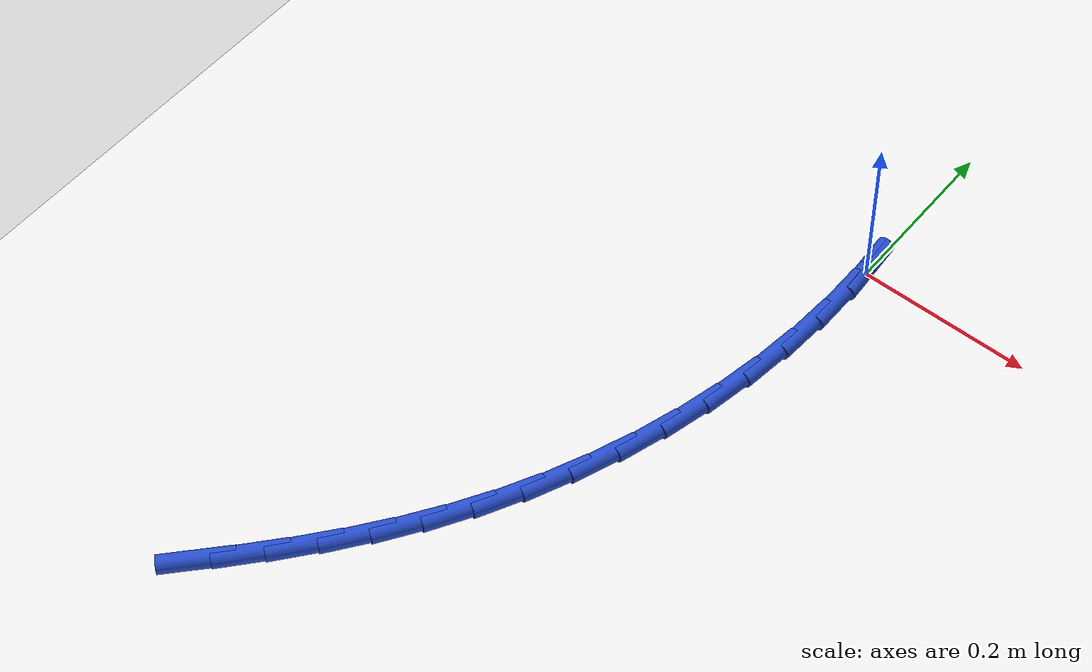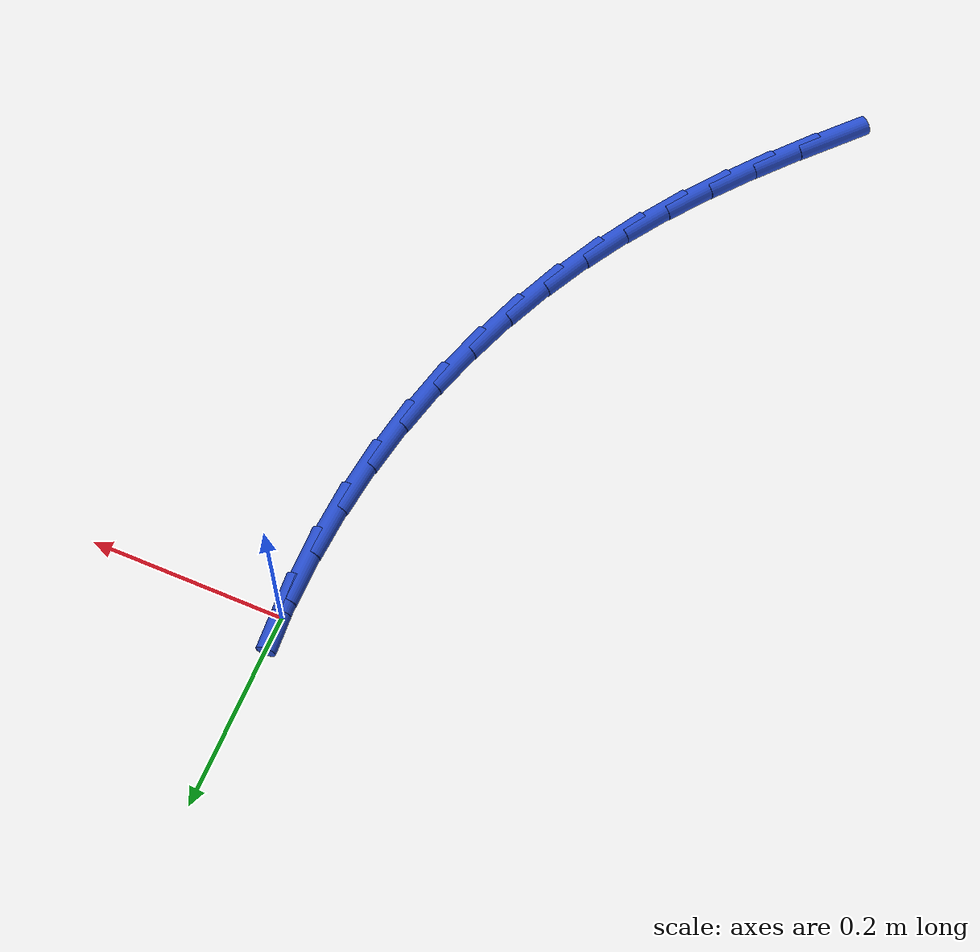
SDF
<sdf version="1.6">
 <world name="default">
  <model name="ground_plane">
   <static>1</static>
   <link name="link">
    <collision name="collision">
     <geometry><plane><normal>0 0 1</normal><size>100 100</size></plane></geometry>
     <surface><friction><ode><mu>100</mu><mu2>50</mu2></ode></friction></surface>
    </collision>
    <visual name="visual">
     <cast_shadows>0</cast_shadows>
     <geometry><plane><normal>0 0 1</normal><size>100 100</size></plane></geometry>
     <material>
      <script><uri>file://media/materials/scripts/gazebo.material</uri><name>Gazebo/WhiteGlow</name></script>
     </material>
    </visual>
   </link>
  </model>
  <model name="line">
   <link name="link_0">
    <pose>1.734723475976807e-17 -4.163336342344337e-17 0.01 0 1.57 -1.5069342114797732</pose>
    <collision name="collision">
     <geometry><cylinder><radius>0.01</radius><length>0.08</length></cylinder></geometry>
    </collision>
    <visual name="visual">
     <material>
      <script><name>Gazebo/Blue</name><uri>file://media/materials/scripts/gazebo.material</uri></script>
     </material>
     <geometry><cylinder><radius>0.01</radius><length>0.08</length></cylinder></geometry>
    </visual>
   </link>
   <link name="link_125">
    <pose>-0.3036543982249472 -0.7085538495268223 0.01 0 1.57 0.8201374668254308</pose>
    <collision name="collision">
     <geometry><cylinder><radius>0.01</radius><length>0.08</length></cylinder></geometry>
    </collision>
    <visual name="visual">
     <material>
      <script><name>Gazebo/Blue</name><uri>file://media/materials/scripts/gazebo.material</uri></script>
     </material>
     <geometry><cylinder><radius>0.01</radius><length>0.08</length></cylinder></geometry>
    </visual>
   </link>
   <link name="link_126">
    <pose>-0.26699323300843236 -0.6692527459438485 0.01 0 1.57 0.8505710199497232</pose>
    <collision name="collision">
     <geometry><cylinder><radius>0.01</radius><length>0.08</length></cylinder></geometry>
    </collision>
    <visual name="visual">
     <material>
      <script><name>Gazebo/Blue</name><uri>file://media/materials/scripts/gazebo.material</uri></script>
     </material>
     <geometry><cylinder><radius>0.01</radius><length>0.08</length></cylinder></geometry>
    </visual>
   </link>
   <link name="link_127">
    <pose>-0.23208509721345605 -0.6294698804759024 0.01 0 1.57 0.8875198498617581</pose>
    <collision name="collision">
     <geometry><cylinder><radius>0.01</radius><length>0.08</length></cylinder></geometry>
    </collision>
    <visual name="visual">
     <material>
      <script><name>Gazebo/Blue</name><uri>file://media/materials/scripts/gazebo.material</uri></script>
     </material>
     <geometry><cylinder><radius>0.01</radius><length>0.08</length></cylinder></geometry>
    </visual>
   </link>
   <link name="link_128">
    <pose>-0.19907413199881066 -0.5889205948405979 0.01 0 1.57 0.930852631827002</pose>
    <collision name="collision">
     <geometry><cylinder><radius>0.01</radius><length>0.08</length></cylinder></geometry>
    </collision>
    <visual name="visual">
     <material>
      <script><name>Gazebo/Blue</name><uri>file://media/materials/scripts/gazebo.material</uri></script>
     </material>
     <geometry><cylinder><radius>0.01</radius><length>0.08</length></cylinder></geometry>
    </visual>
   </link>
   <link name="link_129">
    <pose>-0.16810447852328922 -0.5473202307555501 0.01 0 1.57 0.9802161530614742</pose>
    <collision name="collision">
     <geometry><cylinder><radius>0.01</radius><length>0.08</length></cylinder></geometry>
    </collision>
    <visual name="visual">
     <material>
      <script><name>Gazebo/Blue</name><uri>file://media/materials/scripts/gazebo.material</uri></script>
     </material>
     <geometry><cylinder><radius>0.01</radius><length>0.08</length></cylinder></geometry>
    </visual>
   </link>
   <link name="link_130">
    <pose>-0.13932027794568466 -0.5043841299383733 0.01 0 1.57 1.0349985774888837</pose>
    <collision name="collision">
     <geometry><cylinder><radius>0.01</radius><length>0.08</length></cylinder></geometry>
    </collision>
    <visual name="visual">
     <material>
      <script><name>Gazebo/Blue</name><uri>file://media/materials/scripts/gazebo.material</uri></script>
     </material>
     <geometry><cylinder><radius>0.01</radius><length>0.08</length></cylinder></geometry>
    </visual>
   </link>
   <link name="link_131">
    <pose>-0.11286567142478968 -0.4598276341066817 0.01 0 1.57 1.094234713951829</pose>
    <collision name="collision">
     <geometry><cylinder><radius>0.01</radius><length>0.08</length></cylinder></geometry>
    </collision>
    <visual name="visual">
     <material>
      <script><name>Gazebo/Blue</name><uri>file://media/materials/scripts/gazebo.material</uri></script>
     </material>
     <geometry><cylinder><radius>0.01</radius><length>0.08</length></cylinder></geometry>
    </visual>
   </link>
   <link name="link_132">
    <pose>-0.0888843317001757 -0.4133745249497726 0.01 0 1.57 1.1545314897353067</pose>
    <collision name="collision">
     <geometry><cylinder><radius>0.01</radius><length>0.08</length></cylinder></geometry>
    </collision>
    <visual name="visual">
     <material>
      <script><name>Gazebo/Blue</name><uri>file://media/materials/scripts/gazebo.material</uri></script>
     </material>
     <geometry><cylinder><radius>0.01</radius><length>0.08</length></cylinder></geometry>
    </visual>
   </link>
   <link name="link_133">
    <pose>-0.06750508335703648 -0.36501611801655637 0.01 0 1.57 1.2132151131809779</pose>
    <collision name="collision">
     <geometry><cylinder><radius>0.01</radius><length>0.08</length></cylinder></geometry>
    </collision>
    <visual name="visual">
     <material>
      <script><name>Gazebo/Blue</name><uri>file://media/materials/scripts/gazebo.material</uri></script>
     </material>
     <geometry><cylinder><radius>0.01</radius><length>0.08</length></cylinder></geometry>
    </visual>
   </link>
   <link name="link_134">
    <pose>-0.04883920924130978 -0.31505979569419185 0.01 0 1.57 1.2708790213664207</pose>
    <collision name="collision">
     <geometry><cylinder><radius>0.01</radius><length>0.08</length></cylinder></geometry>
    </collision>
    <visual name="visual">
     <material>
      <script><name>Gazebo/Blue</name><uri>file://media/materials/scripts/gazebo.material</uri></script>
     </material>
     <geometry><cylinder><radius>0.01</radius><length>0.08</length></cylinder></geometry>
    </visual>
   </link>
   <link name="link_135">
    <pose>-0.032996980365091605 -0.263831171579323 0.01 0 1.57 1.3282636805576225</pose>
    <collision name="collision">
     <geometry><cylinder><radius>0.01</radius><length>0.08</length></cylinder></geometry>
    </collision>
    <visual name="visual">
     <material>
      <script><name>Gazebo/Blue</name><uri>file://media/materials/scripts/gazebo.material</uri></script>
     </material>
     <geometry><cylinder><radius>0.01</radius><length>0.08</length></cylinder></geometry>
    </visual>
   </link>
   <link name="link_136">
    <pose>-0.0200886677404786 -0.21165585926859629 0.01 0 1.57 1.386092472204829</pose>
    <collision name="collision">
     <geometry><cylinder><radius>0.01</radius><length>0.08</length></cylinder></geometry>
    </collision>
    <visual name="visual">
     <material>
      <script><name>Gazebo/Blue</name><uri>file://media/materials/scripts/gazebo.material</uri></script>
     </material>
     <geometry><cylinder><radius>0.01</radius><length>0.08</length></cylinder></geometry>
    </visual>
   </link>
   <link name="link_137">
    <pose>-0.010224542379566732 -0.1588594723586558 0.01 0 1.57 1.4450842898560516</pose>
    <collision name="collision">
     <geometry><cylinder><radius>0.01</radius><length>0.08</length></cylinder></geometry>
    </collision>
    <visual name="visual">
     <material>
      <script><name>Gazebo/Blue</name><uri>file://media/materials/scripts/gazebo.material</uri></script>
     </material>
     <geometry><cylinder><radius>0.01</radius><length>0.08</length></cylinder></geometry>
    </visual>
   </link>
   <link name="link_138">
    <pose>-0.0035148752944522063 -0.10576762444614654 0.01 0 1.57 1.5059640629505742</pose>
    <collision name="collision">
     <geometry><cylinder><radius>0.01</radius><length>0.08</length></cylinder></geometry>
    </collision>
    <visual name="visual">
     <material>
      <script><name>Gazebo/Blue</name><uri>file://media/materials/scripts/gazebo.material</uri></script>
     </material>
     <geometry><cylinder><radius>0.01</radius><length>0.08</length></cylinder></geometry>
    </visual>
   </link>
   <link name="link_139">
    <pose>-6.993749723121709e-05 -0.05270592912771327 0.01 0 1.57 1.569469389629744</pose>
    <collision name="collision">
     <geometry><cylinder><radius>0.01</radius><length>0.08</length></cylinder></geometry>
    </collision>
    <visual name="visual">
     <material>
      <script><name>Gazebo/Blue</name><uri>file://media/materials/scripts/gazebo.material</uri></script>
     </material>
     <geometry><cylinder><radius>0.01</radius><length>0.08</length></cylinder></geometry>
    </visual>
   </link>
   <link name="link_140">
    <pose>2.0816681711721685e-17 -9.71445146547012e-17 0.01 0 1.57 -1.5052418890932027</pose>
    <collision name="collision">
     <geometry><cylinder><radius>0.01</radius><length>0.08</length></cylinder></geometry>
    </collision>
    <visual name="visual">
     <material>
      <script><name>Gazebo/Blue</name><uri>file://media/materials/scripts/gazebo.material</uri></script>
     </material>
     <geometry><cylinder><radius>0.01</radius><length>0.08</length></cylinder></geometry>
    </visual>
   </link>
  </model>
 </world>
</sdf>
